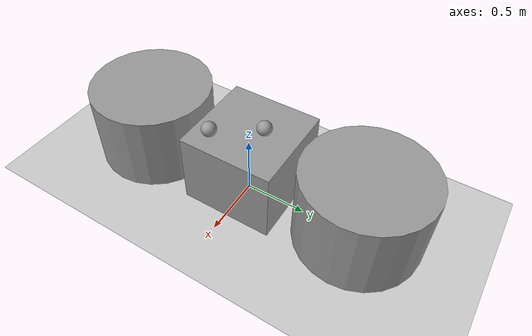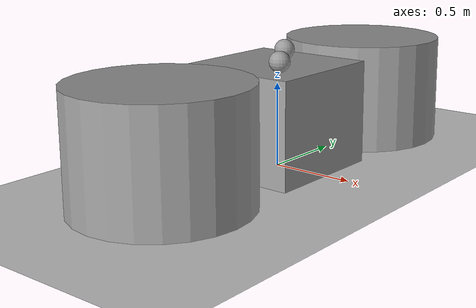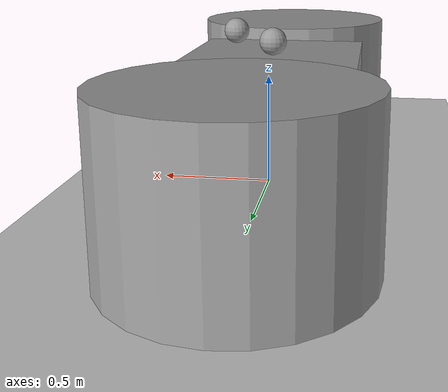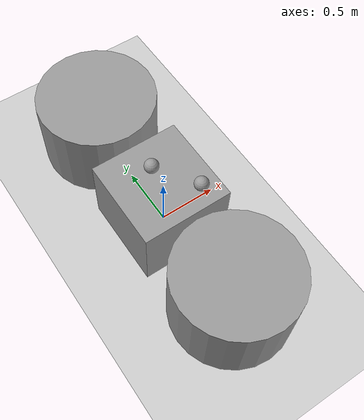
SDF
<sdf version="1.7">
 <world name="default">
  <light name="sun" type="directional">
   <pose>0 0 10 0 -0 0</pose>
   <diffuse>0.8 0.8 0.8 1</diffuse>
   <specular>0.2 0.2 0.2 1</specular>
   <attenuation>
    <range>1000</range>
    <constant>0.9</constant>
    <linear>0.01</linear>
    <quadratic>0.001</quadratic>
   </attenuation>
   <direction>-0.5 0.1 -0.9</direction>
   <spot><inner_angle>0</inner_angle><outer_angle>0</outer_angle><falloff>0</falloff></spot>
  </light>
  <model name="ground_plane">
   <static>1</static>
   <link name="link">
    <collision name="collision">
     <geometry><plane><normal>0 0 1</normal><size>100 100</size></plane></geometry>
     <surface>
      <contact><collide_bitmask>65535</collide_bitmask></contact>
      <friction><ode><mu>100</mu><mu2>50</mu2></ode></friction>
     </surface>
    </collision>
    <visual name="visual">
     <cast_shadows>0</cast_shadows>
     <geometry><plane><normal>0 0 1</normal><size>100 100</size></plane></geometry>
     <material>
      <script><uri>file://media/materials/scripts/gazebo.material</uri><name>Gazebo/Grey</name></script>
     </material>
    </visual>
   </link>
  </model>
  <gravity>0 0 -9.8</gravity>
  <magnetic_field>6e-06 2.3e-05 -4.2e-05</magnetic_field>
  <atmosphere type="adiabatic"/>
  <physics type="ode">
   <max_step_size>0.001</max_step_size>
   <real_time_factor>1</real_time_factor>
   <real_time_update_rate>1000</real_time_update_rate>
  </physics>
  <scene><ambient>0.4 0.4 0.4 1</ambient><background>0.7 0.7 0.7 1</background><shadows>1</shadows></scene>
  <spherical_coordinates>
   <surface_model>EARTH_WGS84</surface_model>
   <latitude_deg>0</latitude_deg>
   <longitude_deg>0</longitude_deg>
   <elevation>0</elevation>
   <heading_deg>0</heading_deg>
  </spherical_coordinates>
  <model name="unit_cylinder">
   <link name="link">
    <inertial>
     <mass>1</mass>
     <inertia><ixx>0.145833</ixx><ixy>0</ixy><ixz>0</ixz><iyy>0.145833</iyy><iyz>0</iyz><izz>0.125</izz></inertia>
    </inertial>
    <visual name="visual">
     <geometry><cylinder><radius>0.5</radius><length>0.659934</length></cylinder></geometry>
     <material>
      <script><name>Gazebo/Grey</name><uri>file://media/materials/scripts/gazebo.material</uri></script>
      <shader type="pixel"/>
     </material>
    </visual>
    <collision name="collision">
     <geometry><cylinder><radius>0.5</radius><length>0.659934</length></cylinder></geometry>
     <surface>
      <friction>
       <ode><mu>1</mu><mu2>1</mu2><fdir1>0 0 0</fdir1><slip1>0</slip1><slip2>0</slip2></ode>
       <torsional>
        <coefficient>1</coefficient>
        <patch_radius>0</patch_radius>
        <surface_radius>0</surface_radius>
        <use_patch_radius>1</use_patch_radius>
        <ode><slip>0</slip></ode>
       </torsional>
      </friction>
      <bounce><restitution_coefficient>0</restitution_coefficient><threshold>1e+06</threshold></bounce>
      <contact>
       <collide_without_contact>0</collide_without_contact>
       <collide_without_contact_bitmask>1</collide_without_contact_bitmask>
       <collide_bitmask>1</collide_bitmask>
       <ode>
        <soft_cfm>0</soft_cfm>
        <soft_erp>0.2</soft_erp>
        <kp>1e+13</kp>
        <kd>1</kd>
        <max_vel>0.01</max_vel>
        <min_depth>0</min_depth>
       </ode>
       <bullet>
        <split_impulse>1</split_impulse>
        <split_impulse_penetration_threshold>-0.01</split_impulse_penetration_threshold>
        <soft_cfm>0</soft_cfm>
        <soft_erp>0.2</soft_erp>
        <kp>1e+13</kp>
        <kd>1</kd>
       </bullet>
      </contact>
     </surface>
    </collision>
   </link>
   <static>1</static>
   <pose>-0.008724 -0.946393 0.329957 0 -0 0</pose>
  </model>
  <model name="unit_cylinder_clone">
   <link name="link">
    <inertial>
     <mass>1</mass>
     <inertia><ixx>0.145833</ixx><ixy>0</ixy><ixz>0</ixz><iyy>0.145833</iyy><iyz>0</iyz><izz>0.125</izz></inertia>
    </inertial>
    <visual name="visual">
     <geometry><cylinder><radius>0.5</radius><length>0.659934</length></cylinder></geometry>
     <material>
      <script><name>Gazebo/Grey</name><uri>file://media/materials/scripts/gazebo.material</uri></script>
      <shader type="pixel"/>
     </material>
    </visual>
    <collision name="collision">
     <geometry><cylinder><radius>0.5</radius><length>0.659934</length></cylinder></geometry>
     <surface>
      <friction>
       <ode><mu>1</mu><mu2>1</mu2><fdir1>0 0 0</fdir1><slip1>0</slip1><slip2>0</slip2></ode>
       <torsional>
        <coefficient>1</coefficient>
        <patch_radius>0</patch_radius>
        <surface_radius>0</surface_radius>
        <use_patch_radius>1</use_patch_radius>
        <ode><slip>0</slip></ode>
       </torsional>
      </friction>
      <bounce><restitution_coefficient>0</restitution_coefficient><threshold>1e+06</threshold></bounce>
      <contact>
       <collide_without_contact>0</collide_without_contact>
       <collide_without_contact_bitmask>1</collide_without_contact_bitmask>
       <collide_bitmask>1</collide_bitmask>
       <ode>
        <soft_cfm>0</soft_cfm>
        <soft_erp>0.2</soft_erp>
        <kp>1e+13</kp>
        <kd>1</kd>
        <max_vel>0.01</max_vel>
        <min_depth>0</min_depth>
       </ode>
       <bullet>
        <split_impulse>1</split_impulse>
        <split_impulse_penetration_threshold>-0.01</split_impulse_penetration_threshold>
        <soft_cfm>0</soft_cfm>
        <soft_erp>0.2</soft_erp>
        <kp>1e+13</kp>
        <kd>1</kd>
       </bullet>
      </contact>
     </surface>
    </collision>
   </link>
   <static>1</static>
   <pose>-0.031276 0.948234 0.329967 0 -0 0</pose>
  </model>
  <model name="unit_box">
   <link name="link">
    <inertial>
     <mass>1</mass>
     <inertia>
      <ixx>0.166667</ixx>
      <ixy>0</ixy>
      <ixz>0</ixz>
      <iyy>0.166667</iyy>
      <iyz>0</iyz>
      <izz>0.166667</izz>
     </inertia>
    </inertial>
    <visual name="visual">
     <geometry><box><size>0.759986 0.762499 0.613072</size></box></geometry>
     <material>
      <script><name>Gazebo/Grey</name><uri>file://media/materials/scripts/gazebo.material</uri></script>
      <shader type="pixel"/>
     </material>
    </visual>
    <collision name="collision">
     <geometry><box><size>0.759986 0.762499 0.613072</size></box></geometry>
     <surface>
      <friction>
       <ode><mu>1</mu><mu2>1</mu2><fdir1>0 0 0</fdir1><slip1>0</slip1><slip2>0</slip2></ode>
       <torsional>
        <coefficient>1</coefficient>
        <patch_radius>0</patch_radius>
        <surface_radius>0</surface_radius>
        <use_patch_radius>1</use_patch_radius>
        <ode><slip>0</slip></ode>
       </torsional>
      </friction>
      <bounce><restitution_coefficient>0</restitution_coefficient><threshold>1e+06</threshold></bounce>
      <contact>
       <collide_without_contact>0</collide_without_contact>
       <collide_without_contact_bitmask>1</collide_without_contact_bitmask>
       <collide_bitmask>1</collide_bitmask>
       <ode>
        <soft_cfm>0</soft_cfm>
        <soft_erp>0.2</soft_erp>
        <kp>1e+13</kp>
        <kd>1</kd>
        <max_vel>0.01</max_vel>
        <min_depth>0</min_depth>
       </ode>
       <bullet>
        <split_impulse>1</split_impulse>
        <split_impulse_penetration_threshold>-0.01</split_impulse_penetration_threshold>
        <soft_cfm>0</soft_cfm>
        <soft_erp>0.2</soft_erp>
        <kp>1e+13</kp>
        <kd>1</kd>
       </bullet>
      </contact>
     </surface>
    </collision>
   </link>
   <static>1</static>
   <pose>-0.029648 -0.001199 0.306536 0 -0 0</pose>
  </model>
  <model name="unit_sphere">
   <pose>-0.035478 0.112842 0.678375 0 -0 0</pose>
   <link name="link">
    <inertial>
     <mass>1</mass>
     <inertia><ixx>0.1</ixx><ixy>0</ixy><ixz>0</ixz><iyy>0.1</iyy><iyz>0</iyz><izz>0.1</izz></inertia>
    </inertial>
    <collision name="collision"><geometry><sphere><radius>0.0596555</radius></sphere></geometry></collision>
    <visual name="visual">
     <geometry><sphere><radius>0.0596555</radius></sphere></geometry>
     <material>
      <script><name>Gazebo/Grey</name><uri>file://media/materials/scripts/gazebo.material</uri></script>
     </material>
    </visual>
   </link>
  </model>
  <model name="unit_sphere_clone">
   <pose>0.189635 -0.225422 0.678375 0 -0 0</pose>
   <link name="link">
    <inertial>
     <mass>1</mass>
     <inertia><ixx>0.1</ixx><ixy>0</ixy><ixz>0</ixz><iyy>0.1</iyy><iyz>0</iyz><izz>0.1</izz></inertia>
    </inertial>
    <collision name="collision"><geometry><sphere><radius>0.0596555</radius></sphere></geometry></collision>
    <visual name="visual">
     <geometry><sphere><radius>0.0596555</radius></sphere></geometry>
     <material>
      <script><name>Gazebo/Grey</name><uri>file://media/materials/scripts/gazebo.material</uri></script>
     </material>
    </visual>
   </link>
  </model>
 </world>
</sdf>
